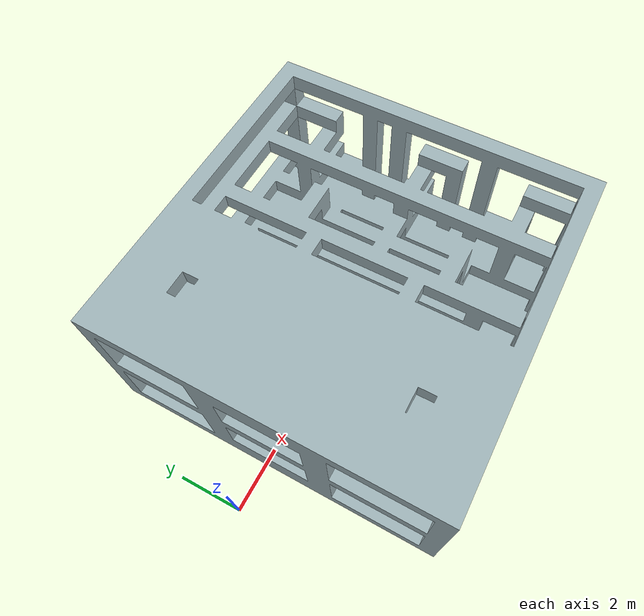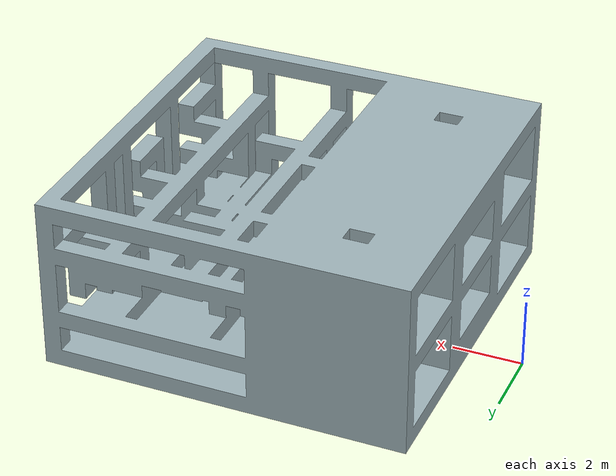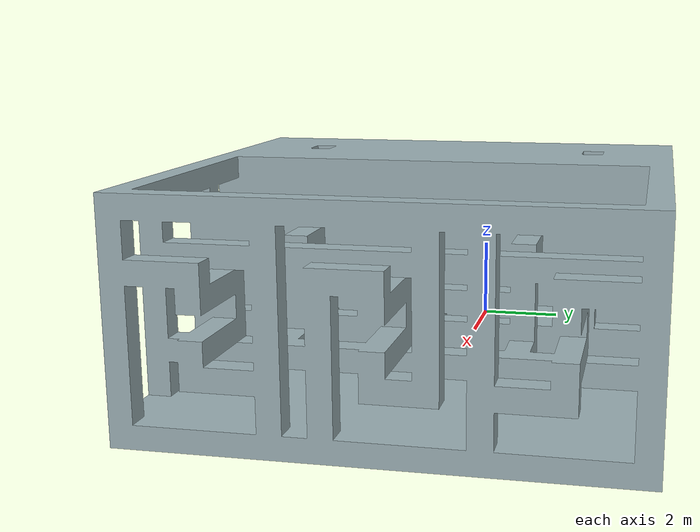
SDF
<?xml version="1.0" ?>
<sdf version="1.6">
  <world name="default">

    <include>
      <uri>model://sun</uri>
    </include>

    <physics type="ode">
      <gravity>0 0 -9.8</gravity>
      <max_step_size>0.001</max_step_size>
      <real_time_factor>1</real_time_factor>
      <real_time_update_rate>1000</real_time_update_rate>
    </physics>

    <scene>
      <ambient>0.8 0.8 0.8 1</ambient>
      <background>0.95 0.95 0.95 1</background>
      <shadows>false</shadows>
    </scene>

    <gui fullscreen='0'>
      <camera name='user_camera'>
        <pose>6 -20 2 0 0 1.5708</pose>
        <view_controller>orbit</view_controller>
        <projection_type>perspective</projection_type>
      </camera>
    </gui>

    <model name="env3d_mesh">
      <static>true</static>
      <pose>12 5 0 1.57 0 -1.57</pose>

      <link name="mesh_link">
        <visual name="visual">
          <geometry>
            <mesh>
              <uri>file:///home/zhicheng/Project/FRGraph/src/simple_robot/worlds/env3D.STL</uri>
              <scale>0.001 0.001 0.001</scale>
            </mesh>
          </geometry>
          <material>
            <ambient>0.62 0.70 0.72 1</ambient>
            <diffuse>0.62 0.70 0.72 1</diffuse>
            <specular>0.08 0.08 0.08 1</specular>
            <emissive>0 0 0 1</emissive>
          </material>
        </visual>

        <collision name="collision">
          <geometry>
            <mesh>
              <uri>file:///home/zhicheng/Project/FRGraph/src/simple_robot/worlds/env3D.STL</uri>
              <scale>0.001 0.001 0.001</scale>
            </mesh>
          </geometry>
        </collision>
      </link>
    </model>

  </world>
</sdf>
